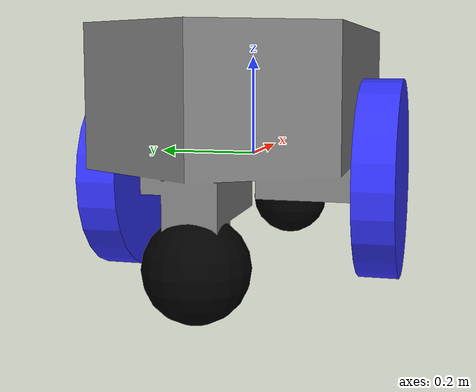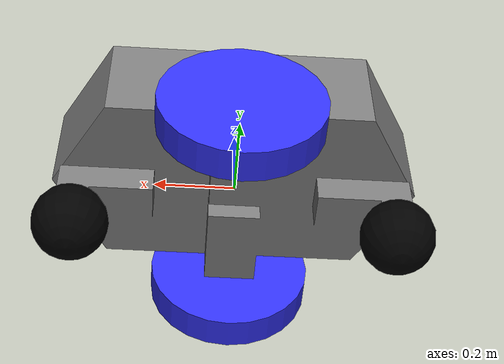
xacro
<?xml version="1.0"?>
<robot xmlns:xacro="http://www.ros.org/wiki/xacro" >

    <xacro:property name="base_width" value="0.31"/>
    <xacro:property name="base_length" value="0.42"/>
    <xacro:property name="base_height" value="0.18"/>

    <xacro:include filename="inertial_macros.xacro"/>
    <xacro:property name="wheel_radius" value="0.10"/>
    <xacro:property name="wheel_width" value="0.04"/>
    <xacro:property name="wheel_ygap" value="0.025"/>
    <xacro:property name="wheel_zoff" value="0.05"/>
    <xacro:property name="wheel_xoff" value="0.12"/>

    <material name="white">
        <color rgba="1 1 1 1"/>
    </material>
    <material name="orange">
        <color rgba="1 0.3 0.1 1"/>
    </material>
    <material name="blue">
        <color rgba="0.2 0.2 1 1"/>
    </material>
    <material name="black">
        <color rgba="0 0 0 1"/>
    </material>
    <material name="red">
        <color rgba="1 0 0 1"/>
    </material>
    <material name="grey">
        <color rgba="0.5 0.5 0.5 1"/>
    </material>

    <!--START OF BASE LINK-->
    <link name="base_link">
    </link>
    <!--END OF BASE LINK-->

    <!-- Robot Footprint -->
    <link name="base_footprint"/>

    <joint name="base_joint" type="fixed">
        <parent link="base_link"/>
        <child link="base_footprint"/>
        <origin xyz="0.0 0.0 ${-(wheel_radius+wheel_zoff)}" rpy="0 0 0"/>
    </joint>

    <!--START OF CHASSIS LINK-->
    <joint name="chassis_joint" type="fixed">
        <parent link="base_link"/>
        <child link="chassis"/>
        <origin xyz="0 0 0"/>
    </joint>

    <!--START OF CHASSIS MODEL-->
    <link name="chassis">
        <visual>
            <origin xyz="0 0 0" rpy="0 0 0"/>
            <geometry>
                <mesh
			filename="file://$(find sim_ign)/custom_models/baseframe.STL"
                    scale="0.001 0.001 0.001"/>
            </geometry>
            <material name="grey"/>
        </visual>
        <collision>
            <origin xyz="0 0 0" rpy="0 0 0"/>
            <geometry>
                <mesh
			filename="file://$(find sim_ign)/custom_models/baseframe.STL"
                    scale="0.001 0.001 0.001"/>
            </geometry>
        </collision>
        <xacro:inertial_box mass="0.5" x="0.8636" y="0.4572" z="0.41021">
            <origin xyz="0 0 0" rpy="0 0 0"/>
        </xacro:inertial_box>
    </link>
    <!--END OF CHASSIS MODEL-->
    <!--END OF CHASSIS LINK-->

    <!--START OF LEFT WHEEL LINK-->
    <joint name="left_wheel_joint" type="continuous">
        <parent link="base_link"/>
        <child link="left_wheel"/>
        <origin xyz="0 0.2686 -0.04318" rpy="-${pi/2} 0 0"/>
        <axis xyz="0 0 1"/>
    </joint>

    <!--START OF LEFT WHEEL MODEL-->
    <link name="left_wheel">
        <visual>
            <geometry>
                <cylinder radius="0.2" length="0.08"/>
            </geometry>
            <material name="blue"/>
        </visual>
        <collision>
            <geometry>
                <cylinder radius="0.2" length="0.08"/>
            </geometry>
        </collision>
        <xacro:inertial_cylinder mass="0.1" length="0.08" radius="0.2">
            <origin xyz="0 0 0" rpy="0 0 0"/>
        </xacro:inertial_cylinder>
    </link>
    <!--END OF LEFT WHEEL MODEL-->
    <!--END OF LEFT WHEEL LINK-->

    <!--START OF RIGHT WHEEL LINK-->
    <joint name="right_wheel_joint" type="continuous">
        <parent link="base_link"/>
        <child link="right_wheel"/>
        <origin xyz="0 -0.2686 -0.04318" rpy="${pi/2} 0 0"/>
        <axis xyz="0 0 -1"/>
    </joint>

    <!--START OF RIGHT WHEEL MODEL-->
    <link name="right_wheel">
        <visual>
            <geometry>
                <cylinder radius="0.2" length="0.08"/>
            </geometry>
            <material name="blue"/>
        </visual>
        <collision>
            <geometry>
                <cylinder radius="0.2" length="0.08"/>
            </geometry>
        </collision>
        <xacro:inertial_cylinder mass="0.1" length="0.08" radius="0.2">
            <origin xyz="0 0 0" rpy="0 0 0"/>
        </xacro:inertial_cylinder>
    </link>
    <!--END OF RIGHT WHEEL MODEL-->
    <!--END OF RIGHT WHEEL LINK-->

    <!--START OF FRONT CASTER WHEEL LINK-->
    <joint name="frontcaster_wheel_joint" type="fixed">
        <parent link="chassis"/>
        <child link="frontcaster_wheel"/>
        <origin xyz="0.39116 0 -0.15113" rpy="0 0 0"/>
    </joint>

    <!--START OF FRONT CASTER WHEEL MODEL-->
    <link name="frontcaster_wheel">
        <visual>
            <geometry>
                <sphere radius="0.09205" />
            </geometry>
            <material name="black"/>
        </visual>
        <collision>
            <geometry>
                <sphere radius="0.09205" />
            </geometry>
        </collision>
        <xacro:inertial_sphere mass="0.1" radius="0.09205">
            <origin xyz="0 0 0" rpy="0 0 0"/>
        </xacro:inertial_sphere>
    </link>

    <gazebo reference="frontcaster_wheel">
        <mu1 value="0.001"/>
        <mu2 value="0.001"/>
    </gazebo>
    <!--END OF FRONT CASTER WHEEL MODEL-->
    <!--END OF FRONT CASTER WHEEL LINK-->

    <!--START OF BACK CASTER WHEEL LINK-->
    <joint name="backcaster_wheel_joint" type="fixed">
        <parent link="chassis"/>
        <child link="backcaster_wheel"/>
        <origin xyz="-0.39116 0 -0.15113" rpy="0 0 0"/>
    </joint>

    <!--START OF BACK CASTER WHEEL MODEL-->
    <link name="backcaster_wheel">
        <visual>
            <geometry>
                <sphere radius="0.09205" />
            </geometry>
            <material name="black"/>
        </visual>
        <collision>
            <geometry>
                <sphere radius="0.09205" />
            </geometry>
        </collision>
        <xacro:inertial_sphere mass="0.1" radius="0.09205">
            <origin xyz="0 0 0" rpy="0 0 0"/>
        </xacro:inertial_sphere>
    </link>

    <gazebo reference="backcaster_wheel">
        <mu1 value="0.001"/>
        <mu2 value="0.001"/>
    </gazebo>
    <!--END OF BACK CASTER WHEEL MODEL-->
    <!--END OF BACK CASTER WHEEL LINK-->

</robot>
